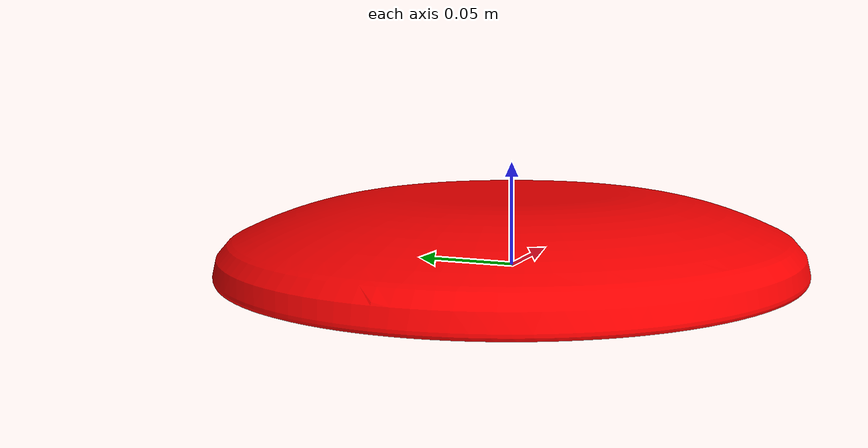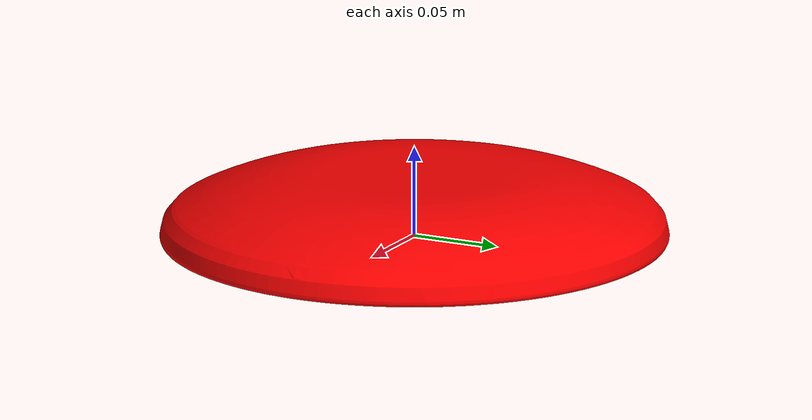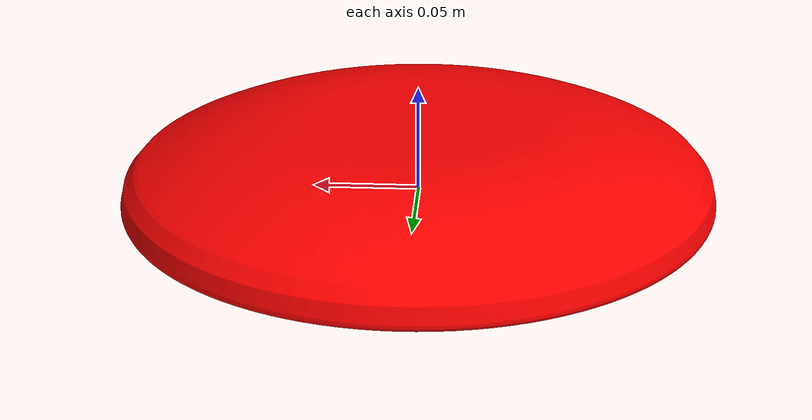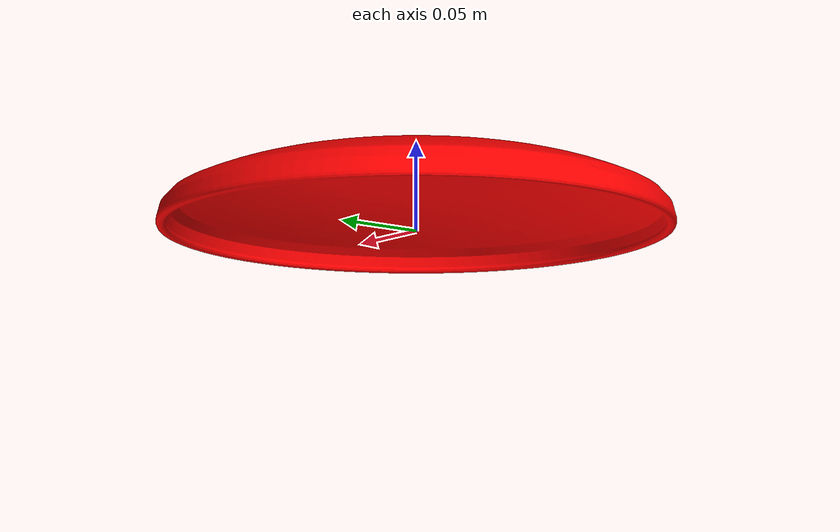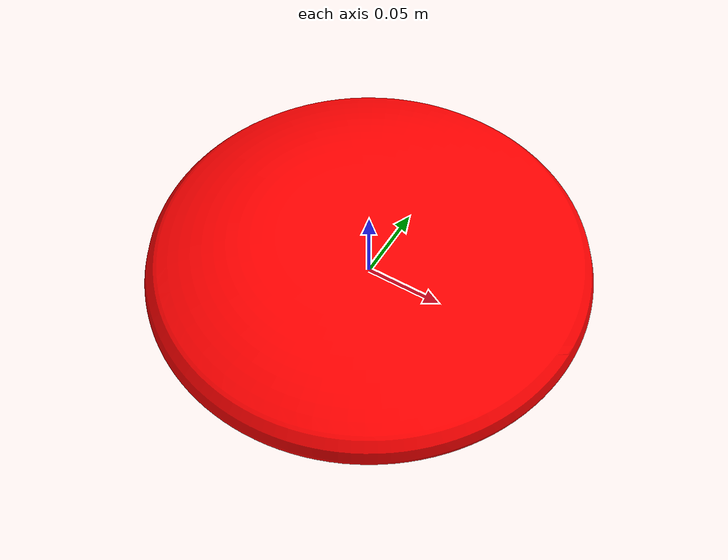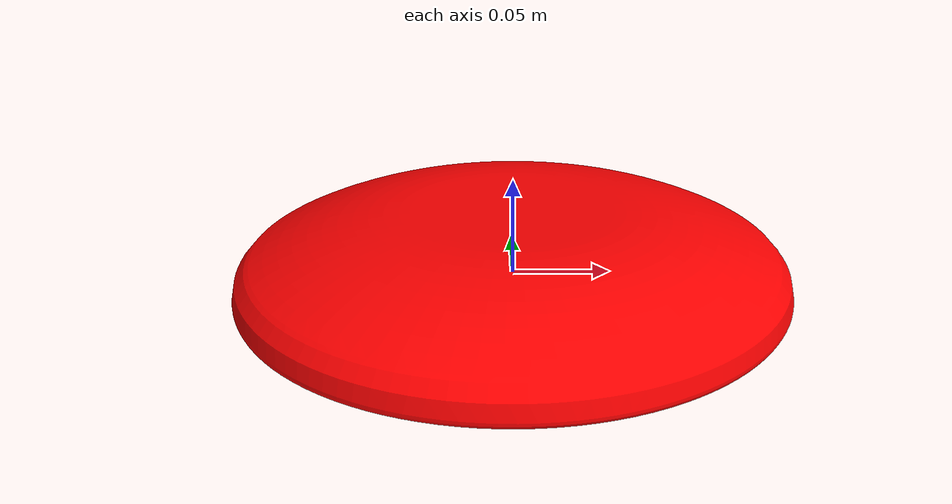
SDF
<?xml version="1.0"?>
<sdf version="1.4">
  <model name="Frisbee">
    <link name="link">
      <pose>0 0 0 1.570796 0 0</pose>

      <inertial>
        <mass>0.175</mass>
        <inertia>
          <ixx>.00126</ixx>
          <ixy>0</ixy>
          <ixz>0</ixz>
          <iyy>.00126</iyy>
          <iyz>0</iyz>
          <izz>.0063941</izz>
        </inertia>
      </inertial>

      <collision name="collision">
        <geometry>
          <mesh>
            <uri>model://frisbee/meshes/frisbee_coll.stl</uri>
            <scale>.0254 .0254 .0254</scale>
          </mesh>
        </geometry>
      </collision>
      <visual name="visual">
        <material>
          <ambient>1 0 0 1</ambient>
          <diffuse>1 0 0 1</diffuse>
          <specular>1 0 0 1</specular>
        </material>
        <geometry>
          <mesh>
            <uri>model://frisbee/meshes/frisbee.stl</uri>
            <scale>.0254 .0254 .0254</scale>
          </mesh>
        </geometry>
      </visual>
    </link>
  </model>
</sdf>
